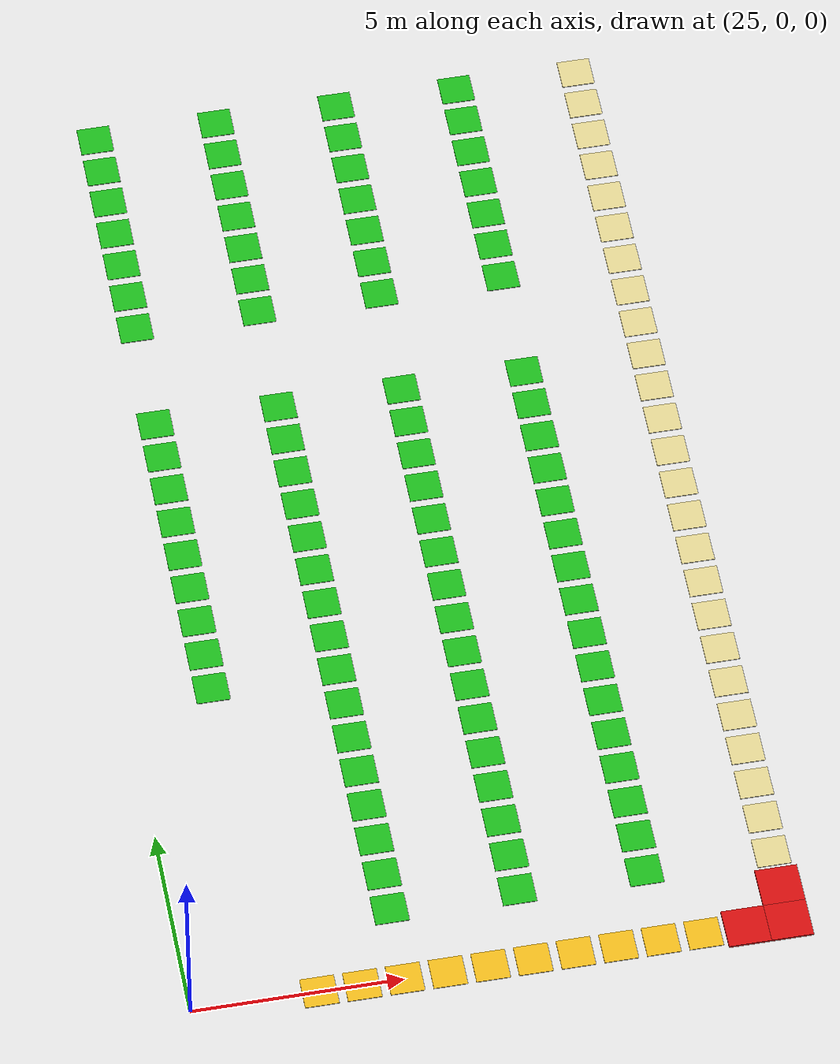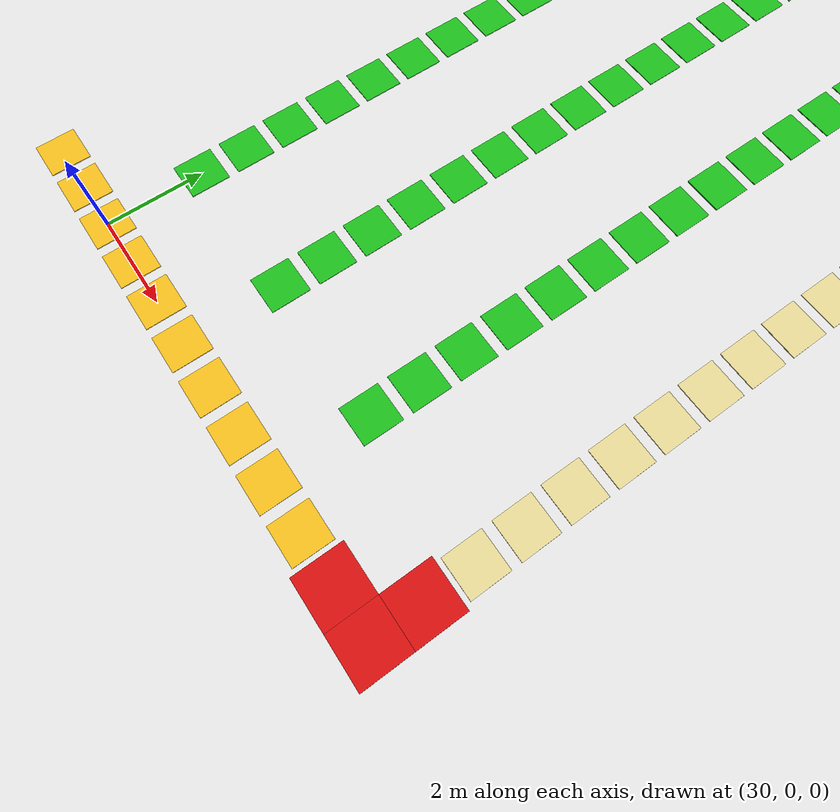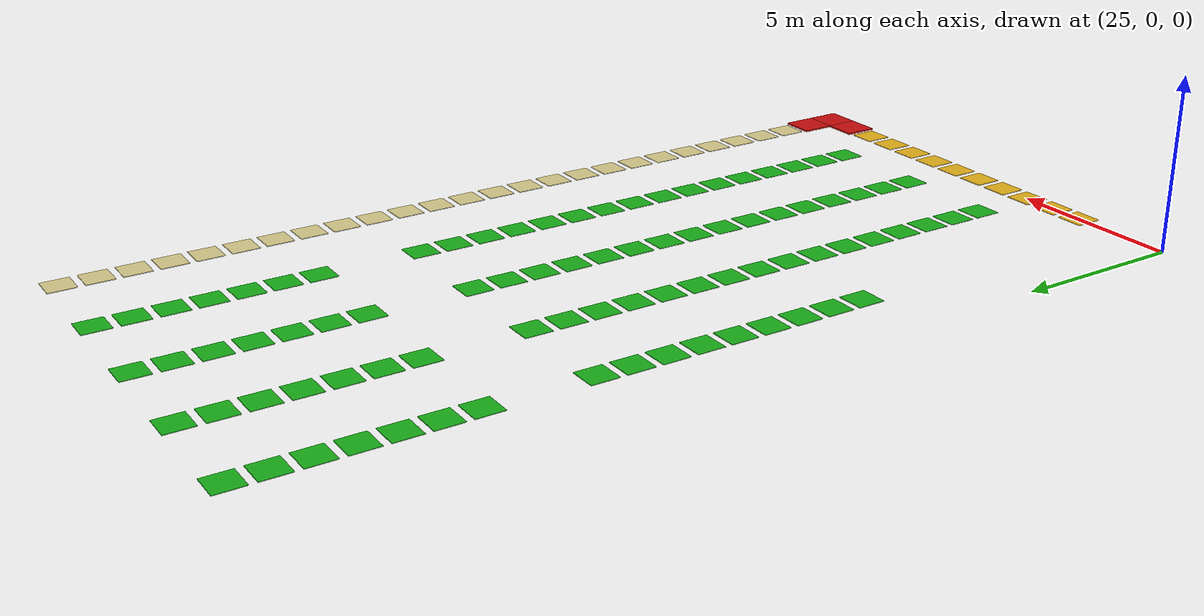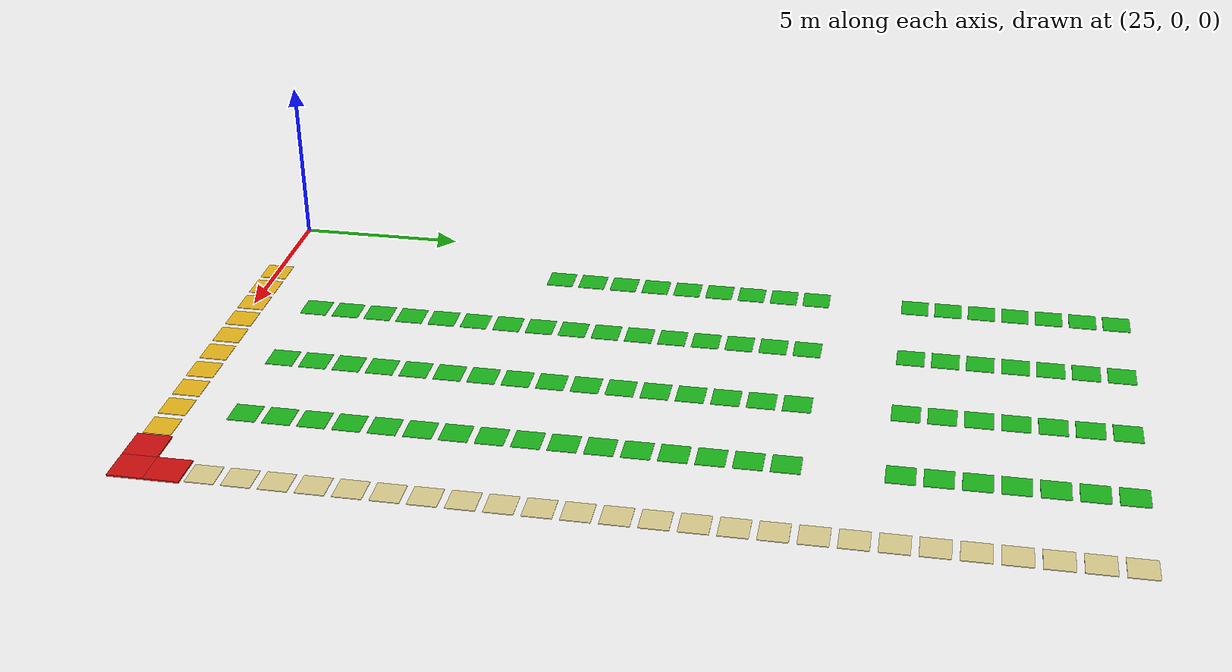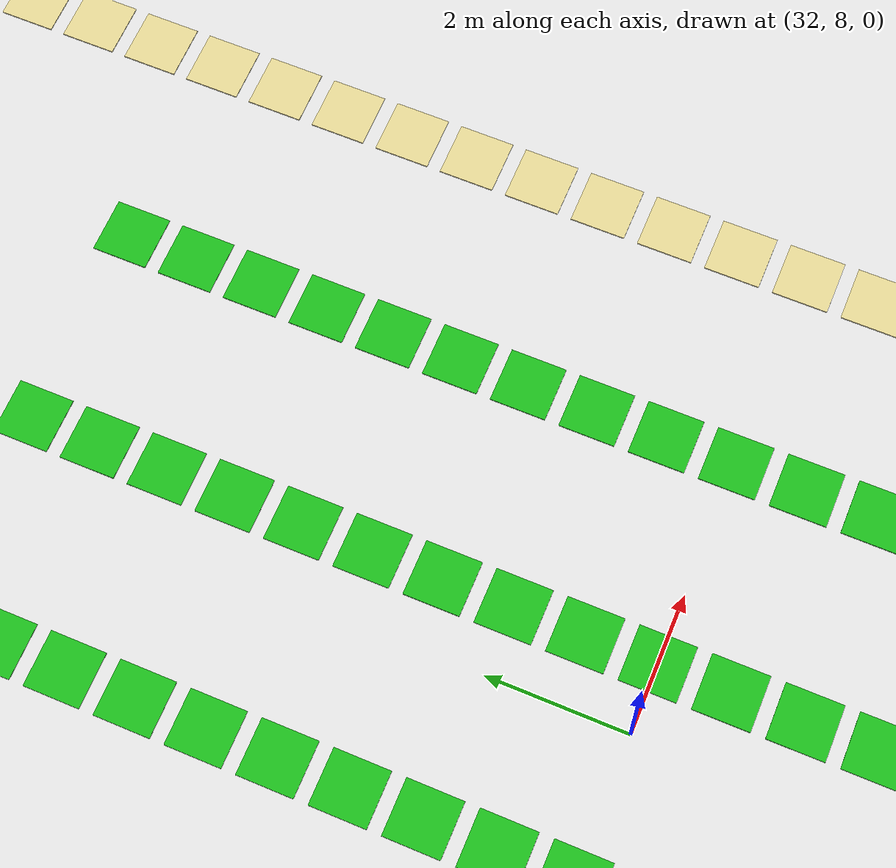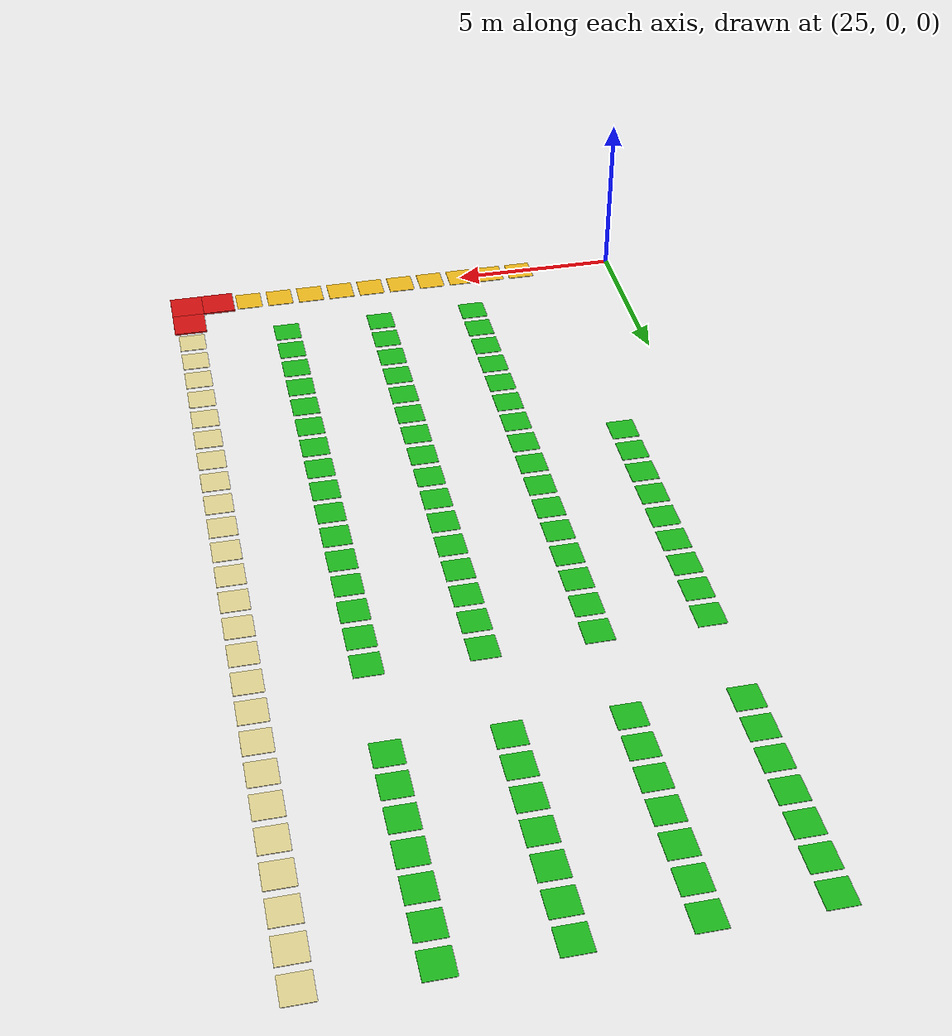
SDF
<sdf version="1.10">
 <world name="warehouse">
  <model name="blocked_0006">
   <static>true</static>
   <pose>38.0
        0.0
        0.045
        0 0 0</pose>
   <link name="link">
    <visual name="visual">
     <geometry><box><size>1.0
                1.0
                0.05</size></box></geometry>
     <material><ambient>0.8 0.05 0.05 1</ambient><diffuse>0.8 0.05 0.05 1</diffuse></material>
    </visual>
   </link>
  </model>
  <model name="blocked_0008">
   <static>true</static>
   <pose>39.0
        0.0
        0.045
        0 0 0</pose>
   <link name="link">
    <visual name="visual">
     <geometry><box><size>1.0
                1.0
                0.05</size></box></geometry>
     <material><ambient>0.8 0.05 0.05 1</ambient><diffuse>0.8 0.05 0.05 1</diffuse></material>
    </visual>
   </link>
  </model>
  <model name="blocked_0009">
   <static>true</static>
   <pose>39.0
        1.0
        0.045
        0 0 0</pose>
   <link name="link">
    <visual name="visual">
     <geometry><box><size>1.0
                1.0
                0.05</size></box></geometry>
     <material><ambient>0.8 0.05 0.05 1</ambient><diffuse>0.8 0.05 0.05 1</diffuse></material>
    </visual>
   </link>
  </model>
  <model name="shelf_285">
   <static>true</static>
   <pose>27.0
        26.0
        0.02
        0 0 0</pose>
   <link name="link">
    <visual name="visual">
     <geometry><box><size>0.8
                0.8
                0.02</size></box></geometry>
     <material><ambient>0.10 0.70 0.10 1</ambient><diffuse>0.10 0.70 0.10 1</diffuse></material>
    </visual>
   </link>
  </model>
  <model name="shelf_286">
   <static>true</static>
   <pose>30.0
        26.0
        0.02
        0 0 0</pose>
   <link name="link">
    <visual name="visual">
     <geometry><box><size>0.8
                0.8
                0.02</size></box></geometry>
     <material><ambient>0.10 0.70 0.10 1</ambient><diffuse>0.10 0.70 0.10 1</diffuse></material>
    </visual>
   </link>
  </model>
  <model name="shelf_287">
   <static>true</static>
   <pose>33.0
        26.0
        0.02
        0 0 0</pose>
   <link name="link">
    <visual name="visual">
     <geometry><box><size>0.8
                0.8
                0.02</size></box></geometry>
     <material><ambient>0.10 0.70 0.10 1</ambient><diffuse>0.10 0.70 0.10 1</diffuse></material>
    </visual>
   </link>
  </model>
  <model name="shelf_288">
   <static>true</static>
   <pose>36.0
        26.0
        0.02
        0 0 0</pose>
   <link name="link">
    <visual name="visual">
     <geometry><box><size>0.8
                0.8
                0.02</size></box></geometry>
     <material><ambient>0.10 0.70 0.10 1</ambient><diffuse>0.10 0.70 0.10 1</diffuse></material>
    </visual>
   </link>
  </model>
  <model name="staging_052">
   <static>true</static>
   <pose>39.0
        26.0
        0.02
        0 0 0</pose>
   <link name="link">
    <visual name="visual">
     <geometry><box><size>0.8
                0.8
                0.02</size></box></geometry>
     <material><ambient>0.85 0.80 0.55 1</ambient><diffuse>0.85 0.80 0.55 1</diffuse></material>
    </visual>
   </link>
  </model>
  <model name="shelf_297">
   <static>true</static>
   <pose>27.0
        25.0
        0.02
        0 0 0</pose>
   <link name="link">
    <visual name="visual">
     <geometry><box><size>0.8
                0.8
                0.02</size></box></geometry>
     <material><ambient>0.10 0.70 0.10 1</ambient><diffuse>0.10 0.70 0.10 1</diffuse></material>
    </visual>
   </link>
  </model>
  <model name="shelf_298">
   <static>true</static>
   <pose>30.0
        25.0
        0.02
        0 0 0</pose>
   <link name="link">
    <visual name="visual">
     <geometry><box><size>0.8
                0.8
                0.02</size></box></geometry>
     <material><ambient>0.10 0.70 0.10 1</ambient><diffuse>0.10 0.70 0.10 1</diffuse></material>
    </visual>
   </link>
  </model>
  <model name="shelf_299">
   <static>true</static>
   <pose>33.0
        25.0
        0.02
        0 0 0</pose>
   <link name="link">
    <visual name="visual">
     <geometry><box><size>0.8
                0.8
                0.02</size></box></geometry>
     <material><ambient>0.10 0.70 0.10 1</ambient><diffuse>0.10 0.70 0.10 1</diffuse></material>
    </visual>
   </link>
  </model>
  <model name="shelf_300">
   <static>true</static>
   <pose>36.0
        25.0
        0.02
        0 0 0</pose>
   <link name="link">
    <visual name="visual">
     <geometry><box><size>0.8
                0.8
                0.02</size></box></geometry>
     <material><ambient>0.10 0.70 0.10 1</ambient><diffuse>0.10 0.70 0.10 1</diffuse></material>
    </visual>
   </link>
  </model>
  <model name="staging_054">
   <static>true</static>
   <pose>39.0
        25.0
        0.02
        0 0 0</pose>
   <link name="link">
    <visual name="visual">
     <geometry><box><size>0.8
                0.8
                0.02</size></box></geometry>
     <material><ambient>0.85 0.80 0.55 1</ambient><diffuse>0.85 0.80 0.55 1</diffuse></material>
    </visual>
   </link>
  </model>
  <model name="shelf_309">
   <static>true</static>
   <pose>27.0
        24.0
        0.02
        0 0 0</pose>
   <link name="link">
    <visual name="visual">
     <geometry><box><size>0.8
                0.8
                0.02</size></box></geometry>
     <material><ambient>0.10 0.70 0.10 1</ambient><diffuse>0.10 0.70 0.10 1</diffuse></material>
    </visual>
   </link>
  </model>
  <model name="shelf_310">
   <static>true</static>
   <pose>30.0
        24.0
        0.02
        0 0 0</pose>
   <link name="link">
    <visual name="visual">
     <geometry><box><size>0.8
                0.8
                0.02</size></box></geometry>
     <material><ambient>0.10 0.70 0.10 1</ambient><diffuse>0.10 0.70 0.10 1</diffuse></material>
    </visual>
   </link>
  </model>
  <model name="shelf_311">
   <static>true</static>
   <pose>33.0
        24.0
        0.02
        0 0 0</pose>
   <link name="link">
    <visual name="visual">
     <geometry><box><size>0.8
                0.8
                0.02</size></box></geometry>
     <material><ambient>0.10 0.70 0.10 1</ambient><diffuse>0.10 0.70 0.10 1</diffuse></material>
    </visual>
   </link>
  </model>
  <model name="shelf_312">
   <static>true</static>
   <pose>36.0
        24.0
        0.02
        0 0 0</pose>
   <link name="link">
    <visual name="visual">
     <geometry><box><size>0.8
                0.8
                0.02</size></box></geometry>
     <material><ambient>0.10 0.70 0.10 1</ambient><diffuse>0.10 0.70 0.10 1</diffuse></material>
    </visual>
   </link>
  </model>
  <model name="staging_056">
   <static>true</static>
   <pose>39.0
        24.0
        0.02
        0 0 0</pose>
   <link name="link">
    <visual name="visual">
     <geometry><box><size>0.8
                0.8
                0.02</size></box></geometry>
     <material><ambient>0.85 0.80 0.55 1</ambient><diffuse>0.85 0.80 0.55 1</diffuse></material>
    </visual>
   </link>
  </model>
  <model name="shelf_321">
   <static>true</static>
   <pose>27.0
        23.0
        0.02
        0 0 0</pose>
   <link name="link">
    <visual name="visual">
     <geometry><box><size>0.8
                0.8
                0.02</size></box></geometry>
     <material><ambient>0.10 0.70 0.10 1</ambient><diffuse>0.10 0.70 0.10 1</diffuse></material>
    </visual>
   </link>
  </model>
  <model name="shelf_322">
   <static>true</static>
   <pose>30.0
        23.0
        0.02
        0 0 0</pose>
   <link name="link">
    <visual name="visual">
     <geometry><box><size>0.8
                0.8
                0.02</size></box></geometry>
     <material><ambient>0.10 0.70 0.10 1</ambient><diffuse>0.10 0.70 0.10 1</diffuse></material>
    </visual>
   </link>
  </model>
  <model name="shelf_323">
   <static>true</static>
   <pose>33.0
        23.0
        0.02
        0 0 0</pose>
   <link name="link">
    <visual name="visual">
     <geometry><box><size>0.8
                0.8
                0.02</size></box></geometry>
     <material><ambient>0.10 0.70 0.10 1</ambient><diffuse>0.10 0.70 0.10 1</diffuse></material>
    </visual>
   </link>
  </model>
  <model name="shelf_324">
   <static>true</static>
   <pose>36.0
        23.0
        0.02
        0 0 0</pose>
   <link name="link">
    <visual name="visual">
     <geometry><box><size>0.8
                0.8
                0.02</size></box></geometry>
     <material><ambient>0.10 0.70 0.10 1</ambient><diffuse>0.10 0.70 0.10 1</diffuse></material>
    </visual>
   </link>
  </model>
  <model name="staging_058">
   <static>true</static>
   <pose>39.0
        23.0
        0.02
        0 0 0</pose>
   <link name="link">
    <visual name="visual">
     <geometry><box><size>0.8
                0.8
                0.02</size></box></geometry>
     <material><ambient>0.85 0.80 0.55 1</ambient><diffuse>0.85 0.80 0.55 1</diffuse></material>
    </visual>
   </link>
  </model>
  <model name="shelf_333">
   <static>true</static>
   <pose>27.0
        22.0
        0.02
        0 0 0</pose>
   <link name="link">
    <visual name="visual">
     <geometry><box><size>0.8
                0.8
                0.02</size></box></geometry>
     <material><ambient>0.10 0.70 0.10 1</ambient><diffuse>0.10 0.70 0.10 1</diffuse></material>
    </visual>
   </link>
  </model>
  <model name="shelf_334">
   <static>true</static>
   <pose>30.0
        22.0
        0.02
        0 0 0</pose>
   <link name="link">
    <visual name="visual">
     <geometry><box><size>0.8
                0.8
                0.02</size></box></geometry>
     <material><ambient>0.10 0.70 0.10 1</ambient><diffuse>0.10 0.70 0.10 1</diffuse></material>
    </visual>
   </link>
  </model>
  <model name="shelf_335">
   <static>true</static>
   <pose>33.0
        22.0
        0.02
        0 0 0</pose>
   <link name="link">
    <visual name="visual">
     <geometry><box><size>0.8
                0.8
                0.02</size></box></geometry>
     <material><ambient>0.10 0.70 0.10 1</ambient><diffuse>0.10 0.70 0.10 1</diffuse></material>
    </visual>
   </link>
  </model>
  <model name="shelf_336">
   <static>true</static>
   <pose>36.0
        22.0
        0.02
        0 0 0</pose>
   <link name="link">
    <visual name="visual">
     <geometry><box><size>0.8
                0.8
                0.02</size></box></geometry>
     <material><ambient>0.10 0.70 0.10 1</ambient><diffuse>0.10 0.70 0.10 1</diffuse></material>
    </visual>
   </link>
  </model>
  <model name="staging_060">
   <static>true</static>
   <pose>39.0
        22.0
        0.02
        0 0 0</pose>
   <link name="link">
    <visual name="visual">
     <geometry><box><size>0.8
                0.8
                0.02</size></box></geometry>
     <material><ambient>0.85 0.80 0.55 1</ambient><diffuse>0.85 0.80 0.55 1</diffuse></material>
    </visual>
   </link>
  </model>
  <model name="shelf_345">
   <static>true</static>
   <pose>27.0
        21.0
        0.02
        0 0 0</pose>
   <link name="link">
    <visual name="visual">
     <geometry><box><size>0.8
                0.8
                0.02</size></box></geometry>
     <material><ambient>0.10 0.70 0.10 1</ambient><diffuse>0.10 0.70 0.10 1</diffuse></material>
    </visual>
   </link>
  </model>
  <model name="shelf_346">
   <static>true</static>
   <pose>30.0
        21.0
        0.02
        0 0 0</pose>
   <link name="link">
    <visual name="visual">
     <geometry><box><size>0.8
                0.8
                0.02</size></box></geometry>
     <material><ambient>0.10 0.70 0.10 1</ambient><diffuse>0.10 0.70 0.10 1</diffuse></material>
    </visual>
   </link>
  </model>
  <model name="shelf_347">
   <static>true</static>
   <pose>33.0
        21.0
        0.02
        0 0 0</pose>
   <link name="link">
    <visual name="visual">
     <geometry><box><size>0.8
                0.8
                0.02</size></box></geometry>
     <material><ambient>0.10 0.70 0.10 1</ambient><diffuse>0.10 0.70 0.10 1</diffuse></material>
    </visual>
   </link>
  </model>
  <model name="shelf_348">
   <static>true</static>
   <pose>36.0
        21.0
        0.02
        0 0 0</pose>
   <link name="link">
    <visual name="visual">
     <geometry><box><size>0.8
                0.8
                0.02</size></box></geometry>
     <material><ambient>0.10 0.70 0.10 1</ambient><diffuse>0.10 0.70 0.10 1</diffuse></material>
    </visual>
   </link>
  </model>
  <model name="staging_062">
   <static>true</static>
   <pose>39.0
        21.0
        0.02
        0 0 0</pose>
   <link name="link">
    <visual name="visual">
     <geometry><box><size>0.8
                0.8
                0.02</size></box></geometry>
     <material><ambient>0.85 0.80 0.55 1</ambient><diffuse>0.85 0.80 0.55 1</diffuse></material>
    </visual>
   </link>
  </model>
  <model name="shelf_357">
   <static>true</static>
   <pose>27.0
        20.0
        0.02
        0 0 0</pose>
   <link name="link">
    <visual name="visual">
     <geometry><box><size>0.8
                0.8
                0.02</size></box></geometry>
     <material><ambient>0.10 0.70 0.10 1</ambient><diffuse>0.10 0.70 0.10 1</diffuse></material>
    </visual>
   </link>
  </model>
  <model name="shelf_358">
   <static>true</static>
   <pose>30.0
        20.0
        0.02
        0 0 0</pose>
   <link name="link">
    <visual name="visual">
     <geometry><box><size>0.8
                0.8
                0.02</size></box></geometry>
     <material><ambient>0.10 0.70 0.10 1</ambient><diffuse>0.10 0.70 0.10 1</diffuse></material>
    </visual>
   </link>
  </model>
  <model name="shelf_359">
   <static>true</static>
   <pose>33.0
        20.0
        0.02
        0 0 0</pose>
   <link name="link">
    <visual name="visual">
     <geometry><box><size>0.8
                0.8
                0.02</size></box></geometry>
     <material><ambient>0.10 0.70 0.10 1</ambient><diffuse>0.10 0.70 0.10 1</diffuse></material>
    </visual>
   </link>
  </model>
  <model name="shelf_360">
   <static>true</static>
   <pose>36.0
        20.0
        0.02
        0 0 0</pose>
   <link name="link">
    <visual name="visual">
     <geometry><box><size>0.8
                0.8
                0.02</size></box></geometry>
     <material><ambient>0.10 0.70 0.10 1</ambient><diffuse>0.10 0.70 0.10 1</diffuse></material>
    </visual>
   </link>
  </model>
  <model name="staging_064">
   <static>true</static>
   <pose>39.0
        20.0
        0.02
        0 0 0</pose>
   <link name="link">
    <visual name="visual">
     <geometry><box><size>0.8
                0.8
                0.02</size></box></geometry>
     <material><ambient>0.85 0.80 0.55 1</ambient><diffuse>0.85 0.80 0.55 1</diffuse></material>
    </visual>
   </link>
  </model>
  <model name="staging_066">
   <static>true</static>
   <pose>39.0
        19.0
        0.02
        0 0 0</pose>
   <link name="link">
    <visual name="visual">
     <geometry><box><size>0.8
                0.8
                0.02</size></box></geometry>
     <material><ambient>0.85 0.80 0.55 1</ambient><diffuse>0.85 0.80 0.55 1</diffuse></material>
    </visual>
   </link>
  </model>
  <model name="staging_068">
   <static>true</static>
   <pose>39.0
        18.0
        0.02
        0 0 0</pose>
   <link name="link">
    <visual name="visual">
     <geometry><box><size>0.8
                0.8
                0.02</size></box></geometry>
     <material><ambient>0.85 0.80 0.55 1</ambient><diffuse>0.85 0.80 0.55 1</diffuse></material>
    </visual>
   </link>
  </model>
  <model name="shelf_369">
   <static>true</static>
   <pose>27.0
        17.0
        0.02
        0 0 0</pose>
   <link name="link">
    <visual name="visual">
     <geometry><box><size>0.8
                0.8
                0.02</size></box></geometry>
     <material><ambient>0.10 0.70 0.10 1</ambient><diffuse>0.10 0.70 0.10 1</diffuse></material>
    </visual>
   </link>
  </model>
  <model name="shelf_370">
   <static>true</static>
   <pose>30.0
        17.0
        0.02
        0 0 0</pose>
   <link name="link">
    <visual name="visual">
     <geometry><box><size>0.8
                0.8
                0.02</size></box></geometry>
     <material><ambient>0.10 0.70 0.10 1</ambient><diffuse>0.10 0.70 0.10 1</diffuse></material>
    </visual>
   </link>
  </model>
  <model name="shelf_371">
   <static>true</static>
   <pose>33.0
        17.0
        0.02
        0 0 0</pose>
   <link name="link">
    <visual name="visual">
     <geometry><box><size>0.8
                0.8
                0.02</size></box></geometry>
     <material><ambient>0.10 0.70 0.10 1</ambient><diffuse>0.10 0.70 0.10 1</diffuse></material>
    </visual>
   </link>
  </model>
  <model name="shelf_372">
   <static>true</static>
   <pose>36.0
        17.0
        0.02
        0 0 0</pose>
   <link name="link">
    <visual name="visual">
     <geometry><box><size>0.8
                0.8
                0.02</size></box></geometry>
     <material><ambient>0.10 0.70 0.10 1</ambient><diffuse>0.10 0.70 0.10 1</diffuse></material>
    </visual>
   </link>
  </model>
  <model name="staging_070">
   <static>true</static>
   <pose>39.0
        17.0
        0.02
        0 0 0</pose>
   <link name="link">
    <visual name="visual">
     <geometry><box><size>0.8
                0.8
                0.02</size></box></geometry>
     <material><ambient>0.85 0.80 0.55 1</ambient><diffuse>0.85 0.80 0.55 1</diffuse></material>
    </visual>
   </link>
  </model>
  <model name="shelf_381">
   <static>true</static>
   <pose>27.0
        16.0
        0.02
        0 0 0</pose>
   <link name="link">
    <visual name="visual">
     <geometry><box><size>0.8
                0.8
                0.02</size></box></geometry>
     <material><ambient>0.10 0.70 0.10 1</ambient><diffuse>0.10 0.70 0.10 1</diffuse></material>
    </visual>
   </link>
  </model>
  <model name="shelf_382">
   <static>true</static>
   <pose>30.0
        16.0
        0.02
        0 0 0</pose>
   <link name="link">
    <visual name="visual">
     <geometry><box><size>0.8
                0.8
                0.02</size></box></geometry>
     <material><ambient>0.10 0.70 0.10 1</ambient><diffuse>0.10 0.70 0.10 1</diffuse></material>
    </visual>
   </link>
  </model>
  <model name="shelf_383">
   <static>true</static>
   <pose>33.0
        16.0
        0.02
        0 0 0</pose>
   <link name="link">
    <visual name="visual">
     <geometry><box><size>0.8
                0.8
                0.02</size></box></geometry>
     <material><ambient>0.10 0.70 0.10 1</ambient><diffuse>0.10 0.70 0.10 1</diffuse></material>
    </visual>
   </link>
  </model>
  <model name="shelf_384">
   <static>true</static>
   <pose>36.0
        16.0
        0.02
        0 0 0</pose>
   <link name="link">
    <visual name="visual">
     <geometry><box><size>0.8
                0.8
                0.02</size></box></geometry>
     <material><ambient>0.10 0.70 0.10 1</ambient><diffuse>0.10 0.70 0.10 1</diffuse></material>
    </visual>
   </link>
  </model>
  <model name="staging_072">
   <static>true</static>
   <pose>39.0
        16.0
        0.02
        0 0 0</pose>
   <link name="link">
    <visual name="visual">
     <geometry><box><size>0.8
                0.8
                0.02</size></box></geometry>
     <material><ambient>0.85 0.80 0.55 1</ambient><diffuse>0.85 0.80 0.55 1</diffuse></material>
    </visual>
   </link>
  </model>
  <model name="shelf_393">
   <static>true</static>
   <pose>27.0
        15.0
        0.02
        0 0 0</pose>
   <link name="link">
    <visual name="visual">
     <geometry><box><size>0.8
                0.8
                0.02</size></box></geometry>
     <material><ambient>0.10 0.70 0.10 1</ambient><diffuse>0.10 0.70 0.10 1</diffuse></material>
    </visual>
   </link>
  </model>
  <model name="shelf_394">
   <static>true</static>
   <pose>30.0
        15.0
        0.02
        0 0 0</pose>
   <link name="link">
    <visual name="visual">
     <geometry><box><size>0.8
                0.8
                0.02</size></box></geometry>
     <material><ambient>0.10 0.70 0.10 1</ambient><diffuse>0.10 0.70 0.10 1</diffuse></material>
    </visual>
   </link>
  </model>
  <model name="shelf_395">
   <static>true</static>
   <pose>33.0
        15.0
        0.02
        0 0 0</pose>
   <link name="link">
    <visual name="visual">
     <geometry><box><size>0.8
                0.8
                0.02</size></box></geometry>
     <material><ambient>0.10 0.70 0.10 1</ambient><diffuse>0.10 0.70 0.10 1</diffuse></material>
    </visual>
   </link>
  </model>
  <model name="shelf_396">
   <static>true</static>
   <pose>36.0
        15.0
        0.02
        0 0 0</pose>
   <link name="link">
    <visual name="visual">
     <geometry><box><size>0.8
                0.8
                0.02</size></box></geometry>
     <material><ambient>0.10 0.70 0.10 1</ambient><diffuse>0.10 0.70 0.10 1</diffuse></material>
    </visual>
   </link>
  </model>
  <model name="staging_074">
   <static>true</static>
   <pose>39.0
        15.0
        0.02
        0 0 0</pose>
   <link name="link">
    <visual name="visual">
     <geometry><box><size>0.8
                0.8
                0.02</size></box></geometry>
     <material><ambient>0.85 0.80 0.55 1</ambient><diffuse>0.85 0.80 0.55 1</diffuse></material>
    </visual>
   </link>
  </model>
  <model name="shelf_405">
   <static>true</static>
   <pose>27.0
        14.0
        0.02
        0 0 0</pose>
   <link name="link">
    <visual name="visual">
     <geometry><box><size>0.8
                0.8
                0.02</size></box></geometry>
     <material><ambient>0.10 0.70 0.10 1</ambient><diffuse>0.10 0.70 0.10 1</diffuse></material>
    </visual>
   </link>
  </model>
  <model name="shelf_406">
   <static>true</static>
   <pose>30.0
        14.0
        0.02
        0 0 0</pose>
   <link name="link">
    <visual name="visual">
     <geometry><box><size>0.8
                0.8
                0.02</size></box></geometry>
     <material><ambient>0.10 0.70 0.10 1</ambient><diffuse>0.10 0.70 0.10 1</diffuse></material>
    </visual>
   </link>
  </model>
  <model name="shelf_407">
   <static>true</static>
   <pose>33.0
        14.0
        0.02
        0 0 0</pose>
   <link name="link">
    <visual name="visual">
     <geometry><box><size>0.8
                0.8
                0.02</size></box></geometry>
     <material><ambient>0.10 0.70 0.10 1</ambient><diffuse>0.10 0.70 0.10 1</diffuse></material>
    </visual>
   </link>
  </model>
  <model name="shelf_408">
   <static>true</static>
   <pose>36.0
        14.0
        0.02
        0 0 0</pose>
   <link name="link">
    <visual name="visual">
     <geometry><box><size>0.8
                0.8
                0.02</size></box></geometry>
     <material><ambient>0.10 0.70 0.10 1</ambient><diffuse>0.10 0.70 0.10 1</diffuse></material>
    </visual>
   </link>
  </model>
  <model name="staging_076">
   <static>true</static>
   <pose>39.0
        14.0
        0.02
        0 0 0</pose>
   <link name="link">
    <visual name="visual">
     <geometry><box><size>0.8
                0.8
                0.02</size></box></geometry>
     <material><ambient>0.85 0.80 0.55 1</ambient><diffuse>0.85 0.80 0.55 1</diffuse></material>
    </visual>
   </link>
  </model>
  <model name="shelf_417">
   <static>true</static>
   <pose>27.0
        13.0
        0.02
        0 0 0</pose>
   <link name="link">
    <visual name="visual">
     <geometry><box><size>0.8
                0.8
                0.02</size></box></geometry>
     <material><ambient>0.10 0.70 0.10 1</ambient><diffuse>0.10 0.70 0.10 1</diffuse></material>
    </visual>
   </link>
  </model>
  <model name="shelf_418">
   <static>true</static>
   <pose>30.0
        13.0
        0.02
        0 0 0</pose>
   <link name="link">
    <visual name="visual">
     <geometry><box><size>0.8
                0.8
                0.02</size></box></geometry>
     <material><ambient>0.10 0.70 0.10 1</ambient><diffuse>0.10 0.70 0.10 1</diffuse></material>
    </visual>
   </link>
  </model>
  <model name="shelf_419">
   <static>true</static>
   <pose>33.0
        13.0
        0.02
        0 0 0</pose>
   <link name="link">
    <visual name="visual">
     <geometry><box><size>0.8
                0.8
                0.02</size></box></geometry>
     <material><ambient>0.10 0.70 0.10 1</ambient><diffuse>0.10 0.70 0.10 1</diffuse></material>
    </visual>
   </link>
  </model>
  <model name="shelf_420">
   <static>true</static>
   <pose>36.0
        13.0
        0.02
        0 0 0</pose>
   <link name="link">
    <visual name="visual">
     <geometry><box><size>0.8
                0.8
                0.02</size></box></geometry>
     <material><ambient>0.10 0.70 0.10 1</ambient><diffuse>0.10 0.70 0.10 1</diffuse></material>
    </visual>
   </link>
  </model>
  <model name="staging_078">
   <static>true</static>
   <pose>39.0
        13.0
        0.02
        0 0 0</pose>
   <link name="link">
    <visual name="visual">
     <geometry><box><size>0.8
                0.8
                0.02</size></box></geometry>
     <material><ambient>0.85 0.80 0.55 1</ambient><diffuse>0.85 0.80 0.55 1</diffuse></material>
    </visual>
   </link>
  </model>
  <model name="shelf_429">
   <static>true</static>
   <pose>27.0
        12.0
        0.02
        0 0 0</pose>
   <link name="link">
    <visual name="visual">
     <geometry><box><size>0.8
                0.8
                0.02</size></box></geometry>
     <material><ambient>0.10 0.70 0.10 1</ambient><diffuse>0.10 0.70 0.10 1</diffuse></material>
    </visual>
   </link>
  </model>
  <model name="shelf_430">
   <static>true</static>
   <pose>30.0
        12.0
        0.02
        0 0 0</pose>
   <link name="link">
    <visual name="visual">
     <geometry><box><size>0.8
                0.8
                0.02</size></box></geometry>
     <material><ambient>0.10 0.70 0.10 1</ambient><diffuse>0.10 0.70 0.10 1</diffuse></material>
    </visual>
   </link>
  </model>
  <model name="shelf_431">
   <static>true</static>
   <pose>33.0
        12.0
        0.02
        0 0 0</pose>
   <link name="link">
    <visual name="visual">
     <geometry><box><size>0.8
                0.8
                0.02</size></box></geometry>
     <material><ambient>0.10 0.70 0.10 1</ambient><diffuse>0.10 0.70 0.10 1</diffuse></material>
    </visual>
   </link>
  </model>
  <model name="shelf_432">
   <static>true</static>
   <pose>36.0
        12.0
        0.02
        0 0 0</pose>
   <link name="link">
    <visual name="visual">
     <geometry><box><size>0.8
                0.8
                0.02</size></box></geometry>
     <material><ambient>0.10 0.70 0.10 1</ambient><diffuse>0.10 0.70 0.10 1</diffuse></material>
    </visual>
   </link>
  </model>
  <model name="staging_080">
   <static>true</static>
   <pose>39.0
        12.0
        0.02
        0 0 0</pose>
   <link name="link">
    <visual name="visual">
     <geometry><box><size>0.8
                0.8
                0.02</size></box></geometry>
     <material><ambient>0.85 0.80 0.55 1</ambient><diffuse>0.85 0.80 0.55 1</diffuse></material>
    </visual>
   </link>
  </model>
  <model name="shelf_441">
   <static>true</static>
   <pose>27.0
        11.0
        0.02
        0 0 0</pose>
   <link name="link">
    <visual name="visual">
     <geometry><box><size>0.8
                0.8
                0.02</size></box></geometry>
     <material><ambient>0.10 0.70 0.10 1</ambient><diffuse>0.10 0.70 0.10 1</diffuse></material>
    </visual>
   </link>
  </model>
  <model name="shelf_442">
   <static>true</static>
   <pose>30.0
        11.0
        0.02
        0 0 0</pose>
   <link name="link">
    <visual name="visual">
     <geometry><box><size>0.8
                0.8
                0.02</size></box></geometry>
     <material><ambient>0.10 0.70 0.10 1</ambient><diffuse>0.10 0.70 0.10 1</diffuse></material>
    </visual>
   </link>
  </model>
  <model name="shelf_443">
   <static>true</static>
   <pose>33.0
        11.0
        0.02
        0 0 0</pose>
   <link name="link">
    <visual name="visual">
     <geometry><box><size>0.8
                0.8
                0.02</size></box></geometry>
     <material><ambient>0.10 0.70 0.10 1</ambient><diffuse>0.10 0.70 0.10 1</diffuse></material>
    </visual>
   </link>
  </model>
  <model name="shelf_444">
   <static>true</static>
   <pose>36.0
        11.0
        0.02
        0 0 0</pose>
   <link name="link">
    <visual name="visual">
     <geometry><box><size>0.8
                0.8
                0.02</size></box></geometry>
     <material><ambient>0.10 0.70 0.10 1</ambient><diffuse>0.10 0.70 0.10 1</diffuse></material>
    </visual>
   </link>
  </model>
  <model name="staging_082">
   <static>true</static>
   <pose>39.0
        11.0
        0.02
        0 0 0</pose>
   <link name="link">
    <visual name="visual">
     <geometry><box><size>0.8
                0.8
                0.02</size></box></geometry>
     <material><ambient>0.85 0.80 0.55 1</ambient><diffuse>0.85 0.80 0.55 1</diffuse></material>
    </visual>
   </link>
  </model>
  <model name="shelf_453">
   <static>true</static>
   <pose>27.0
        10.0
        0.02
        0 0 0</pose>
   <link name="link">
    <visual name="visual">
     <geometry><box><size>0.8
                0.8
                0.02</size></box></geometry>
     <material><ambient>0.10 0.70 0.10 1</ambient><diffuse>0.10 0.70 0.10 1</diffuse></material>
    </visual>
   </link>
  </model>
  <model name="shelf_454">
   <static>true</static>
   <pose>30.0
        10.0
        0.02
        0 0 0</pose>
   <link name="link">
    <visual name="visual">
     <geometry><box><size>0.8
                0.8
                0.02</size></box></geometry>
     <material><ambient>0.10 0.70 0.10 1</ambient><diffuse>0.10 0.70 0.10 1</diffuse></material>
    </visual>
   </link>
  </model>
  <model name="shelf_455">
   <static>true</static>
   <pose>33.0
        10.0
        0.02
        0 0 0</pose>
   <link name="link">
    <visual name="visual">
     <geometry><box><size>0.8
                0.8
                0.02</size></box></geometry>
     <material><ambient>0.10 0.70 0.10 1</ambient><diffuse>0.10 0.70 0.10 1</diffuse></material>
    </visual>
   </link>
  </model>
  <model name="shelf_456">
   <static>true</static>
   <pose>36.0
        10.0
        0.02
        0 0 0</pose>
   <link name="link">
    <visual name="visual">
     <geometry><box><size>0.8
                0.8
                0.02</size></box></geometry>
     <material><ambient>0.10 0.70 0.10 1</ambient><diffuse>0.10 0.70 0.10 1</diffuse></material>
    </visual>
   </link>
  </model>
  <model name="staging_084">
   <static>true</static>
   <pose>39.0
        10.0
        0.02
        0 0 0</pose>
   <link name="link">
    <visual name="visual">
     <geometry><box><size>0.8
                0.8
                0.02</size></box></geometry>
     <material><ambient>0.85 0.80 0.55 1</ambient><diffuse>0.85 0.80 0.55 1</diffuse></material>
    </visual>
   </link>
  </model>
  <model name="shelf_465">
   <static>true</static>
   <pose>27.0
        9.0
        0.02
        0 0 0</pose>
   <link name="link">
    <visual name="visual">
     <geometry><box><size>0.8
                0.8
                0.02</size></box></geometry>
     <material><ambient>0.10 0.70 0.10 1</ambient><diffuse>0.10 0.70 0.10 1</diffuse></material>
    </visual>
   </link>
  </model>
  <model name="shelf_466">
   <static>true</static>
   <pose>30.0
        9.0
        0.02
        0 0 0</pose>
   <link name="link">
    <visual name="visual">
     <geometry><box><size>0.8
                0.8
                0.02</size></box></geometry>
     <material><ambient>0.10 0.70 0.10 1</ambient><diffuse>0.10 0.70 0.10 1</diffuse></material>
    </visual>
   </link>
  </model>
  <model name="shelf_467">
   <static>true</static>
   <pose>33.0
        9.0
        0.02
        0 0 0</pose>
   <link name="link">
    <visual name="visual">
     <geometry><box><size>0.8
                0.8
                0.02</size></box></geometry>
     <material><ambient>0.10 0.70 0.10 1</ambient><diffuse>0.10 0.70 0.10 1</diffuse></material>
    </visual>
   </link>
  </model>
  <model name="shelf_468">
   <static>true</static>
   <pose>36.0
        9.0
        0.02
        0 0 0</pose>
   <link name="link">
    <visual name="visual">
     <geometry><box><size>0.8
                0.8
                0.02</size></box></geometry>
     <material><ambient>0.10 0.70 0.10 1</ambient><diffuse>0.10 0.70 0.10 1</diffuse></material>
    </visual>
   </link>
  </model>
  <model name="staging_086">
   <static>true</static>
   <pose>39.0
        9.0
        0.02
        0 0 0</pose>
   <link name="link">
    <visual name="visual">
     <geometry><box><size>0.8
                0.8
                0.02</size></box></geometry>
     <material><ambient>0.85 0.80 0.55 1</ambient><diffuse>0.85 0.80 0.55 1</diffuse></material>
    </visual>
   </link>
  </model>
  <model name="shelf_478">
   <static>true</static>
   <pose>30.0
        8.0
        0.02
        0 0 0</pose>
   <link name="link">
    <visual name="visual">
     <geometry><box><size>0.8
                0.8
                0.02</size></box></geometry>
     <material><ambient>0.10 0.70 0.10 1</ambient><diffuse>0.10 0.70 0.10 1</diffuse></material>
    </visual>
   </link>
  </model>
  <model name="shelf_479">
   <static>true</static>
   <pose>33.0
        8.0
        0.02
        0 0 0</pose>
   <link name="link">
    <visual name="visual">
     <geometry><box><size>0.8
                0.8
                0.02</size></box></geometry>
     <material><ambient>0.10 0.70 0.10 1</ambient><diffuse>0.10 0.70 0.10 1</diffuse></material>
    </visual>
   </link>
  </model>
  <model name="shelf_480">
   <static>true</static>
   <pose>36.0
        8.0
        0.02
        0 0 0</pose>
   <link name="link">
    <visual name="visual">
     <geometry><box><size>0.8
                0.8
                0.02</size></box></geometry>
     <material><ambient>0.10 0.70 0.10 1</ambient><diffuse>0.10 0.70 0.10 1</diffuse></material>
    </visual>
   </link>
  </model>
  <model name="staging_088">
   <static>true</static>
   <pose>39.0
        8.0
        0.02
        0 0 0</pose>
   <link name="link">
    <visual name="visual">
     <geometry><box><size>0.8
                0.8
                0.02</size></box></geometry>
     <material><ambient>0.85 0.80 0.55 1</ambient><diffuse>0.85 0.80 0.55 1</diffuse></material>
    </visual>
   </link>
  </model>
  <model name="shelf_490">
   <static>true</static>
   <pose>30.0
        7.0
        0.02
        0 0 0</pose>
   <link name="link">
    <visual name="visual">
     <geometry><box><size>0.8
                0.8
                0.02</size></box></geometry>
     <material><ambient>0.10 0.70 0.10 1</ambient><diffuse>0.10 0.70 0.10 1</diffuse></material>
    </visual>
   </link>
  </model>
  <model name="shelf_491">
   <static>true</static>
   <pose>33.0
        7.0
        0.02
        0 0 0</pose>
   <link name="link">
    <visual name="visual">
     <geometry><box><size>0.8
                0.8
                0.02</size></box></geometry>
     <material><ambient>0.10 0.70 0.10 1</ambient><diffuse>0.10 0.70 0.10 1</diffuse></material>
    </visual>
   </link>
  </model>
  <model name="shelf_492">
   <static>true</static>
   <pose>36.0
        7.0
        0.02
        0 0 0</pose>
   <link name="link">
    <visual name="visual">
     <geometry><box><size>0.8
                0.8
                0.02</size></box></geometry>
     <material><ambient>0.10 0.70 0.10 1</ambient><diffuse>0.10 0.70 0.10 1</diffuse></material>
    </visual>
   </link>
  </model>
  <model name="staging_090">
   <static>true</static>
   <pose>39.0
        7.0
        0.02
        0 0 0</pose>
   <link name="link">
    <visual name="visual">
     <geometry><box><size>0.8
                0.8
                0.02</size></box></geometry>
     <material><ambient>0.85 0.80 0.55 1</ambient><diffuse>0.85 0.80 0.55 1</diffuse></material>
    </visual>
   </link>
  </model>
  <model name="shelf_502">
   <static>true</static>
   <pose>30.0
        6.0
        0.02
        0 0 0</pose>
   <link name="link">
    <visual name="visual">
     <geometry><box><size>0.8
                0.8
                0.02</size></box></geometry>
     <material><ambient>0.10 0.70 0.10 1</ambient><diffuse>0.10 0.70 0.10 1</diffuse></material>
    </visual>
   </link>
  </model>
  <model name="shelf_503">
   <static>true</static>
   <pose>33.0
        6.0
        0.02
        0 0 0</pose>
   <link name="link">
    <visual name="visual">
     <geometry><box><size>0.8
                0.8
                0.02</size></box></geometry>
     <material><ambient>0.10 0.70 0.10 1</ambient><diffuse>0.10 0.70 0.10 1</diffuse></material>
    </visual>
   </link>
  </model>
  <model name="shelf_504">
   <static>true</static>
   <pose>36.0
        6.0
        0.02
        0 0 0</pose>
   <link name="link">
    <visual name="visual">
     <geometry><box><size>0.8
                0.8
                0.02</size></box></geometry>
     <material><ambient>0.10 0.70 0.10 1</ambient><diffuse>0.10 0.70 0.10 1</diffuse></material>
    </visual>
   </link>
  </model>
  <model name="staging_092">
   <static>true</static>
   <pose>39.0
        6.0
        0.02
        0 0 0</pose>
   <link name="link">
    <visual name="visual">
     <geometry><box><size>0.8
                0.8
                0.02</size></box></geometry>
     <material><ambient>0.85 0.80 0.55 1</ambient><diffuse>0.85 0.80 0.55 1</diffuse></material>
    </visual>
   </link>
  </model>
  <model name="shelf_514">
   <static>true</static>
   <pose>30.0
        5.0
        0.02
        0 0 0</pose>
   <link name="link">
    <visual name="visual">
     <geometry><box><size>0.8
                0.8
                0.02</size></box></geometry>
     <material><ambient>0.10 0.70 0.10 1</ambient><diffuse>0.10 0.70 0.10 1</diffuse></material>
    </visual>
   </link>
  </model>
  <model name="shelf_515">
   <static>true</static>
   <pose>33.0
        5.0
        0.02
        0 0 0</pose>
   <link name="link">
    <visual name="visual">
     <geometry><box><size>0.8
                0.8
                0.02</size></box></geometry>
     <material><ambient>0.10 0.70 0.10 1</ambient><diffuse>0.10 0.70 0.10 1</diffuse></material>
    </visual>
   </link>
  </model>
  <model name="shelf_516">
   <static>true</static>
   <pose>36.0
        5.0
        0.02
        0 0 0</pose>
   <link name="link">
    <visual name="visual">
     <geometry><box><size>0.8
                0.8
                0.02</size></box></geometry>
     <material><ambient>0.10 0.70 0.10 1</ambient><diffuse>0.10 0.70 0.10 1</diffuse></material>
    </visual>
   </link>
  </model>
  <model name="staging_094">
   <static>true</static>
   <pose>39.0
        5.0
        0.02
        0 0 0</pose>
   <link name="link">
    <visual name="visual">
     <geometry><box><size>0.8
                0.8
                0.02</size></box></geometry>
     <material><ambient>0.85 0.80 0.55 1</ambient><diffuse>0.85 0.80 0.55 1</diffuse></material>
    </visual>
   </link>
  </model>
  <model name="shelf_526">
   <static>true</static>
   <pose>30.0
        4.0
        0.02
        0 0 0</pose>
   <link name="link">
    <visual name="visual">
     <geometry><box><size>0.8
                0.8
                0.02</size></box></geometry>
     <material><ambient>0.10 0.70 0.10 1</ambient><diffuse>0.10 0.70 0.10 1</diffuse></material>
    </visual>
   </link>
  </model>
  <model name="shelf_527">
   <static>true</static>
   <pose>33.0
        4.0
        0.02
        0 0 0</pose>
   <link name="link">
    <visual name="visual">
     <geometry><box><size>0.8
                0.8
                0.02</size></box></geometry>
     <material><ambient>0.10 0.70 0.10 1</ambient><diffuse>0.10 0.70 0.10 1</diffuse></material>
    </visual>
   </link>
  </model>
  <model name="shelf_528">
   <static>true</static>
   <pose>36.0
        4.0
        0.02
        0 0 0</pose>
   <link name="link">
    <visual name="visual">
     <geometry><box><size>0.8
                0.8
                0.02</size></box></geometry>
     <material><ambient>0.10 0.70 0.10 1</ambient><diffuse>0.10 0.70 0.10 1</diffuse></material>
    </visual>
   </link>
  </model>
  <model name="staging_096">
   <static>true</static>
   <pose>39.0
        4.0
        0.02
        0 0 0</pose>
   <link name="link">
    <visual name="visual">
     <geometry><box><size>0.8
                0.8
                0.02</size></box></geometry>
     <material><ambient>0.85 0.80 0.55 1</ambient><diffuse>0.85 0.80 0.55 1</diffuse></material>
    </visual>
   </link>
  </model>
  <model name="shelf_538">
   <static>true</static>
   <pose>30.0
        3.0
        0.02
        0 0 0</pose>
   <link name="link">
    <visual name="visual">
     <geometry><box><size>0.8
                0.8
                0.02</size></box></geometry>
     <material><ambient>0.10 0.70 0.10 1</ambient><diffuse>0.10 0.70 0.10 1</diffuse></material>
    </visual>
   </link>
  </model>
  <model name="shelf_539">
   <static>true</static>
   <pose>33.0
        3.0
        0.02
        0 0 0</pose>
   <link name="link">
    <visual name="visual">
     <geometry><box><size>0.8
                0.8
                0.02</size></box></geometry>
     <material><ambient>0.10 0.70 0.10 1</ambient><diffuse>0.10 0.70 0.10 1</diffuse></material>
    </visual>
   </link>
  </model>
  <model name="shelf_540">
   <static>true</static>
   <pose>36.0
        3.0
        0.02
        0 0 0</pose>
   <link name="link">
    <visual name="visual">
     <geometry><box><size>0.8
                0.8
                0.02</size></box></geometry>
     <material><ambient>0.10 0.70 0.10 1</ambient><diffuse>0.10 0.70 0.10 1</diffuse></material>
    </visual>
   </link>
  </model>
  <model name="staging_098">
   <static>true</static>
   <pose>39.0
        3.0
        0.02
        0 0 0</pose>
   <link name="link">
    <visual name="visual">
     <geometry><box><size>0.8
                0.8
                0.02</size></box></geometry>
     <material><ambient>0.85 0.80 0.55 1</ambient><diffuse>0.85 0.80 0.55 1</diffuse></material>
    </visual>
   </link>
  </model>
  <model name="shelf_550">
   <static>true</static>
   <pose>30.0
        2.0
        0.02
        0 0 0</pose>
   <link name="link">
    <visual name="visual">
     <geometry><box><size>0.8
                0.8
                0.02</size></box></geometry>
     <material><ambient>0.10 0.70 0.10 1</ambient><diffuse>0.10 0.70 0.10 1</diffuse></material>
    </visual>
   </link>
  </model>
  <model name="shelf_551">
   <static>true</static>
   <pose>33.0
        2.0
        0.02
        0 0 0</pose>
   <link name="link">
    <visual name="visual">
     <geometry><box><size>0.8
                0.8
                0.02</size></box></geometry>
     <material><ambient>0.10 0.70 0.10 1</ambient><diffuse>0.10 0.70 0.10 1</diffuse></material>
    </visual>
   </link>
  </model>
  <model name="shelf_552">
   <static>true</static>
   <pose>36.0
        2.0
        0.02
        0 0 0</pose>
   <link name="link">
    <visual name="visual">
     <geometry><box><size>0.8
                0.8
                0.02</size></box></geometry>
     <material><ambient>0.10 0.70 0.10 1</ambient><diffuse>0.10 0.70 0.10 1</diffuse></material>
    </visual>
   </link>
  </model>
  <model name="staging_100">
   <static>true</static>
   <pose>39.0
        2.0
        0.02
        0 0 0</pose>
   <link name="link">
    <visual name="visual">
     <geometry><box><size>0.8
                0.8
                0.02</size></box></geometry>
     <material><ambient>0.85 0.80 0.55 1</ambient><diffuse>0.85 0.80 0.55 1</diffuse></material>
    </visual>
   </link>
  </model>
  <model name="dropoff_027">
   <static>true</static>
   <pose>28.0
        0.0
        0.02
        0 0 0</pose>
   <link name="link">
    <visual name="visual">
     <geometry><box><size>0.8
                0.8
                0.02</size></box></geometry>
     <material><ambient>0.90 0.70 0.10 1</ambient><diffuse>0.90 0.70 0.10 1</diffuse></material>
    </visual>
   </link>
  </model>
  <model name="dropoff_028">
   <static>true</static>
   <pose>29.0
        0.0
        0.02
        0 0 0</pose>
   <link name="link">
    <visual name="visual">
     <geometry><box><size>0.8
                0.8
                0.02</size></box></geometry>
     <material><ambient>0.90 0.70 0.10 1</ambient><diffuse>0.90 0.70 0.10 1</diffuse></material>
    </visual>
   </link>
  </model>
  <model name="dropoff_029">
   <static>true</static>
   <pose>30.0
        0.0
        0.02
        0 0 0</pose>
   <link name="link">
    <visual name="visual">
     <geometry><box><size>0.8
                0.8
                0.02</size></box></geometry>
     <material><ambient>0.90 0.70 0.10 1</ambient><diffuse>0.90 0.70 0.10 1</diffuse></material>
    </visual>
   </link>
  </model>
  <model name="dropoff_030">
   <static>true</static>
   <pose>31.0
        0.0
        0.02
        0 0 0</pose>
   <link name="link">
    <visual name="visual">
     <geometry><box><size>0.8
                0.8
                0.02</size></box></geometry>
     <material><ambient>0.90 0.70 0.10 1</ambient><diffuse>0.90 0.70 0.10 1</diffuse></material>
    </visual>
   </link>
  </model>
  <model name="dropoff_031">
   <static>true</static>
   <pose>32.0
        0.0
        0.02
        0 0 0</pose>
   <link name="link">
    <visual name="visual">
     <geometry><box><size>0.8
                0.8
                0.02</size></box></geometry>
     <material><ambient>0.90 0.70 0.10 1</ambient><diffuse>0.90 0.70 0.10 1</diffuse></material>
    </visual>
   </link>
  </model>
  <model name="dropoff_032">
   <static>true</static>
   <pose>33.0
        0.0
        0.02
        0 0 0</pose>
   <link name="link">
    <visual name="visual">
     <geometry><box><size>0.8
                0.8
                0.02</size></box></geometry>
     <material><ambient>0.90 0.70 0.10 1</ambient><diffuse>0.90 0.70 0.10 1</diffuse></material>
    </visual>
   </link>
  </model>
  <model name="dropoff_033">
   <static>true</static>
   <pose>34.0
        0.0
        0.02
        0 0 0</pose>
   <link name="link">
    <visual name="visual">
     <geometry><box><size>0.8
                0.8
                0.02</size></box></geometry>
     <material><ambient>0.90 0.70 0.10 1</ambient><diffuse>0.90 0.70 0.10 1</diffuse></material>
    </visual>
   </link>
  </model>
  <model name="dropoff_034">
   <static>true</static>
   <pose>35.0
        0.0
        0.02
        0 0 0</pose>
   <link name="link">
    <visual name="visual">
     <geometry><box><size>0.8
                0.8
                0.02</size></box></geometry>
     <material><ambient>0.90 0.70 0.10 1</ambient><diffuse>0.90 0.70 0.10 1</diffuse></material>
    </visual>
   </link>
  </model>
  <model name="dropoff_035">
   <static>true</static>
   <pose>36.0
        0.0
        0.02
        0 0 0</pose>
   <link name="link">
    <visual name="visual">
     <geometry><box><size>0.8
                0.8
                0.02</size></box></geometry>
     <material><ambient>0.90 0.70 0.10 1</ambient><diffuse>0.90 0.70 0.10 1</diffuse></material>
    </visual>
   </link>
  </model>
  <model name="dropoff_036">
   <static>true</static>
   <pose>37.0
        0.0
        0.02
        0 0 0</pose>
   <link name="link">
    <visual name="visual">
     <geometry><box><size>0.8
                0.8
                0.02</size></box></geometry>
     <material><ambient>0.90 0.70 0.10 1</ambient><diffuse>0.90 0.70 0.10 1</diffuse></material>
    </visual>
   </link>
  </model>
 </world>
</sdf>
